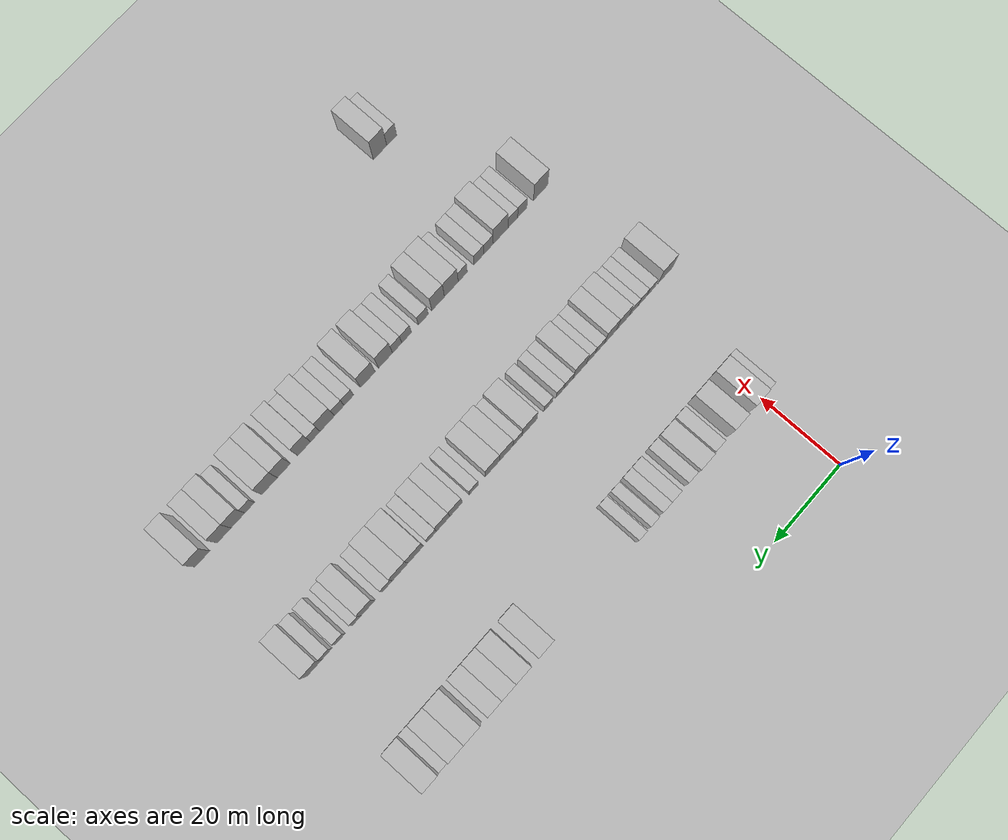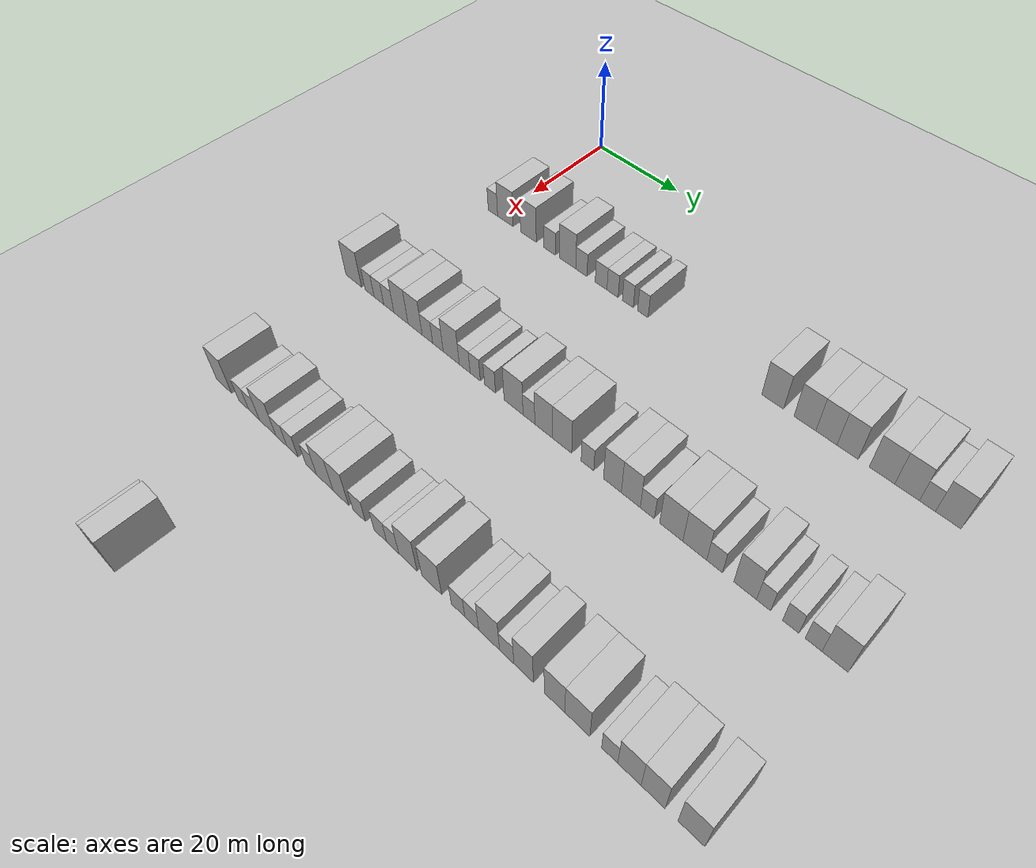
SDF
<sdf version="1.6">
 <world name="default">
  <include><name>ground_plane_1</name><uri>model://HANNAS_ground_plane</uri></include>
  <include>
   <name>ground_plane_2</name>
   <uri>model://HANNAS_ground_plane</uri>
   <pose>100 0 0  0 0 0</pose>
  </include>
  <model name="building_119">
   <static>1</static>
   <pose>25.0000 -1.2006 0 0.000000 0.000000 0.000000</pose>
   <link name="link">
    <pose>0 0 3.00 0 0 0</pose>
    <collision name="collision"><geometry><box><size>10.0000 2.5966 6.0000</size></box></geometry></collision>
    <visual name="visual">
     <cast_shadows>0</cast_shadows>
     <geometry><box><size>10.0000 2.5966 6.0000</size></box></geometry>
     <material>
      <script>
       <uri>model://HANNAS_wall/materials/scripts</uri>
       <uri>model://HANNAS_wall/materials/textures</uri>
       <name>vrc/HANNAS_wall</name>
      </script>
     </material>
    </visual>
   </link>
  </model>
  <model name="building_120">
   <static>1</static>
   <pose>25.0000 2.2116 0 0.000000 0.000000 0.000000</pose>
   <link name="link">
    <pose>0 0 4.50 0 0 0</pose>
    <collision name="collision"><geometry><box><size>10.0000 4.2278 9.0000</size></box></geometry></collision>
    <visual name="visual">
     <cast_shadows>0</cast_shadows>
     <geometry><box><size>10.0000 4.2278 9.0000</size></box></geometry>
     <material>
      <script>
       <uri>model://HANNAS_wall/materials/scripts</uri>
       <uri>model://HANNAS_wall/materials/textures</uri>
       <name>vrc/HANNAS_wall</name>
      </script>
     </material>
    </visual>
   </link>
  </model>
  <model name="building_121">
   <static>1</static>
   <pose>25.0000 8.4004 0 0.000000 0.000000 0.000000</pose>
   <link name="link">
    <pose>0 0 4.50 0 0 0</pose>
    <collision name="collision"><geometry><box><size>10.0000 4.1498 9.0000</size></box></geometry></collision>
    <visual name="visual">
     <cast_shadows>0</cast_shadows>
     <geometry><box><size>10.0000 4.1498 9.0000</size></box></geometry>
     <material>
      <script>
       <uri>model://HANNAS_wall/materials/scripts</uri>
       <uri>model://HANNAS_wall/materials/textures</uri>
       <name>vrc/HANNAS_wall</name>
      </script>
     </material>
    </visual>
   </link>
  </model>
  <model name="building_122">
   <static>1</static>
   <pose>25.0000 13.9528 0 0.000000 0.000000 0.000000</pose>
   <link name="link">
    <pose>0 0 3.00 0 0 0</pose>
    <collision name="collision"><geometry><box><size>10.0000 2.9549 6.0000</size></box></geometry></collision>
    <visual name="visual">
     <cast_shadows>0</cast_shadows>
     <geometry><box><size>10.0000 2.9549 6.0000</size></box></geometry>
     <material>
      <script>
       <uri>model://HANNAS_wall/materials/scripts</uri>
       <uri>model://HANNAS_wall/materials/textures</uri>
       <name>vrc/HANNAS_wall</name>
      </script>
     </material>
    </visual>
   </link>
  </model>
  <model name="building_123">
   <static>1</static>
   <pose>25.0000 18.4940 0 0.000000 0.000000 0.000000</pose>
   <link name="link">
    <pose>0 0 4.50 0 0 0</pose>
    <collision name="collision"><geometry><box><size>10.0000 4.1277 9.0000</size></box></geometry></collision>
    <visual name="visual">
     <cast_shadows>0</cast_shadows>
     <geometry><box><size>10.0000 4.1277 9.0000</size></box></geometry>
     <material>
      <script>
       <uri>model://HANNAS_wall/materials/scripts</uri>
       <uri>model://HANNAS_wall/materials/textures</uri>
       <name>vrc/HANNAS_wall</name>
      </script>
     </material>
    </visual>
   </link>
  </model>
  <model name="building_124">
   <static>1</static>
   <pose>25.0000 21.9542 0 0.000000 0.000000 0.000000</pose>
   <link name="link">
    <pose>0 0 3.00 0 0 0</pose>
    <collision name="collision"><geometry><box><size>10.0000 2.7927 6.0000</size></box></geometry></collision>
    <visual name="visual">
     <cast_shadows>0</cast_shadows>
     <geometry><box><size>10.0000 2.7927 6.0000</size></box></geometry>
     <material>
      <script>
       <uri>model://HANNAS_wall/materials/scripts</uri>
       <uri>model://HANNAS_wall/materials/textures</uri>
       <name>vrc/HANNAS_wall</name>
      </script>
     </material>
    </visual>
   </link>
  </model>
  <model name="building_125">
   <static>1</static>
   <pose>25.0000 26.7696 0 0.000000 0.000000 0.000000</pose>
   <link name="link">
    <pose>0 0 3.00 0 0 0</pose>
    <collision name="collision"><geometry><box><size>10.0000 2.8382 6.0000</size></box></geometry></collision>
    <visual name="visual">
     <cast_shadows>0</cast_shadows>
     <geometry><box><size>10.0000 2.8382 6.0000</size></box></geometry>
     <material>
      <script>
       <uri>model://HANNAS_wall/materials/scripts</uri>
       <uri>model://HANNAS_wall/materials/textures</uri>
       <name>vrc/HANNAS_wall</name>
      </script>
     </material>
    </visual>
   </link>
  </model>
  <model name="building_126">
   <static>1</static>
   <pose>25.0000 29.5200 0 0.000000 0.000000 0.000000</pose>
   <link name="link">
    <pose>0 0 3.00 0 0 0</pose>
    <collision name="collision"><geometry><box><size>10.0000 2.6626 6.0000</size></box></geometry></collision>
    <visual name="visual">
     <cast_shadows>0</cast_shadows>
     <geometry><box><size>10.0000 2.6626 6.0000</size></box></geometry>
     <material>
      <script>
       <uri>model://HANNAS_wall/materials/scripts</uri>
       <uri>model://HANNAS_wall/materials/textures</uri>
       <name>vrc/HANNAS_wall</name>
      </script>
     </material>
    </visual>
   </link>
  </model>
  <model name="building_127">
   <static>1</static>
   <pose>25.0000 33.1247 0 0.000000 0.000000 0.000000</pose>
   <link name="link">
    <pose>0 0 3.00 0 0 0</pose>
    <collision name="collision"><geometry><box><size>10.0000 2.5468 6.0000</size></box></geometry></collision>
    <visual name="visual">
     <cast_shadows>0</cast_shadows>
     <geometry><box><size>10.0000 2.5468 6.0000</size></box></geometry>
     <material>
      <script>
       <uri>model://HANNAS_wall/materials/scripts</uri>
       <uri>model://HANNAS_wall/materials/textures</uri>
       <name>vrc/HANNAS_wall</name>
      </script>
     </material>
    </visual>
   </link>
  </model>
  <model name="building_128">
   <static>1</static>
   <pose>25.0000 36.6034 0 0.000000 0.000000 0.000000</pose>
   <link name="link">
    <pose>0 0 3.00 0 0 0</pose>
    <collision name="collision"><geometry><box><size>10.0000 2.4104 6.0000</size></box></geometry></collision>
    <visual name="visual">
     <cast_shadows>0</cast_shadows>
     <geometry><box><size>10.0000 2.4104 6.0000</size></box></geometry>
     <material>
      <script>
       <uri>model://HANNAS_wall/materials/scripts</uri>
       <uri>model://HANNAS_wall/materials/textures</uri>
       <name>vrc/HANNAS_wall</name>
      </script>
     </material>
    </visual>
   </link>
  </model>
  <model name="building_129">
   <static>1</static>
   <pose>25.0000 64.2995 0 0.000000 0.000000 0.000000</pose>
   <link name="link">
    <pose>0 0 4.50 0 0 0</pose>
    <collision name="collision"><geometry><box><size>10.0000 4.3273 9.0000</size></box></geometry></collision>
    <visual name="visual">
     <cast_shadows>0</cast_shadows>
     <geometry><box><size>10.0000 4.3273 9.0000</size></box></geometry>
     <material>
      <script>
       <uri>model://HANNAS_wall/materials/scripts</uri>
       <uri>model://HANNAS_wall/materials/textures</uri>
       <name>vrc/HANNAS_wall</name>
      </script>
     </material>
    </visual>
   </link>
  </model>
  <model name="building_130">
   <static>1</static>
   <pose>25.0000 70.5624 0 0.000000 0.000000 0.000000</pose>
   <link name="link">
    <pose>0 0 4.50 0 0 0</pose>
    <collision name="collision"><geometry><box><size>10.0000 4.1986 9.0000</size></box></geometry></collision>
    <visual name="visual">
     <cast_shadows>0</cast_shadows>
     <geometry><box><size>10.0000 4.1986 9.0000</size></box></geometry>
     <material>
      <script>
       <uri>model://HANNAS_wall/materials/scripts</uri>
       <uri>model://HANNAS_wall/materials/textures</uri>
       <name>vrc/HANNAS_wall</name>
      </script>
     </material>
    </visual>
   </link>
  </model>
  <model name="building_131">
   <static>1</static>
   <pose>25.0000 74.6292 0 0.000000 0.000000 0.000000</pose>
   <link name="link">
    <pose>0 0 4.50 0 0 0</pose>
    <collision name="collision"><geometry><box><size>10.0000 3.9350 9.0000</size></box></geometry></collision>
    <visual name="visual">
     <cast_shadows>0</cast_shadows>
     <geometry><box><size>10.0000 3.9350 9.0000</size></box></geometry>
     <material>
      <script>
       <uri>model://HANNAS_wall/materials/scripts</uri>
       <uri>model://HANNAS_wall/materials/textures</uri>
       <name>vrc/HANNAS_wall</name>
      </script>
     </material>
    </visual>
   </link>
  </model>
  <model name="building_132">
   <static>1</static>
   <pose>25.0000 78.5221 0 0.000000 0.000000 0.000000</pose>
   <link name="link">
    <pose>0 0 4.50 0 0 0</pose>
    <collision name="collision"><geometry><box><size>10.0000 3.8506 9.0000</size></box></geometry></collision>
    <visual name="visual">
     <cast_shadows>0</cast_shadows>
     <geometry><box><size>10.0000 3.8506 9.0000</size></box></geometry>
     <material>
      <script>
       <uri>model://HANNAS_wall/materials/scripts</uri>
       <uri>model://HANNAS_wall/materials/textures</uri>
       <name>vrc/HANNAS_wall</name>
      </script>
     </material>
    </visual>
   </link>
  </model>
  <model name="building_133">
   <static>1</static>
   <pose>25.0000 84.6858 0 0.000000 0.000000 0.000000</pose>
   <link name="link">
    <pose>0 0 4.50 0 0 0</pose>
    <collision name="collision"><geometry><box><size>10.0000 4.4769 9.0000</size></box></geometry></collision>
    <visual name="visual">
     <cast_shadows>0</cast_shadows>
     <geometry><box><size>10.0000 4.4769 9.0000</size></box></geometry>
     <material>
      <script>
       <uri>model://HANNAS_wall/materials/scripts</uri>
       <uri>model://HANNAS_wall/materials/textures</uri>
       <name>vrc/HANNAS_wall</name>
      </script>
     </material>
    </visual>
   </link>
  </model>
  <model name="building_134">
   <static>1</static>
   <pose>25.0000 89.0425 0 0.000000 0.000000 0.000000</pose>
   <link name="link">
    <pose>0 0 4.50 0 0 0</pose>
    <collision name="collision"><geometry><box><size>10.0000 4.2365 9.0000</size></box></geometry></collision>
    <visual name="visual">
     <cast_shadows>0</cast_shadows>
     <geometry><box><size>10.0000 4.2365 9.0000</size></box></geometry>
     <material>
      <script>
       <uri>model://HANNAS_wall/materials/scripts</uri>
       <uri>model://HANNAS_wall/materials/textures</uri>
       <name>vrc/HANNAS_wall</name>
      </script>
     </material>
    </visual>
   </link>
  </model>
  <model name="building_135">
   <static>1</static>
   <pose>25.0000 92.5062 0 0.000000 0.000000 0.000000</pose>
   <link name="link">
    <pose>0 0 3.00 0 0 0</pose>
    <collision name="collision"><geometry><box><size>10.0000 2.6910 6.0000</size></box></geometry></collision>
    <visual name="visual">
     <cast_shadows>0</cast_shadows>
     <geometry><box><size>10.0000 2.6910 6.0000</size></box></geometry>
     <material>
      <script>
       <uri>model://HANNAS_wall/materials/scripts</uri>
       <uri>model://HANNAS_wall/materials/textures</uri>
       <name>vrc/HANNAS_wall</name>
      </script>
     </material>
    </visual>
   </link>
  </model>
  <model name="building_136">
   <static>1</static>
   <pose>25.0000 95.9658 0 0.000000 0.000000 0.000000</pose>
   <link name="link">
    <pose>0 0 4.50 0 0 0</pose>
    <collision name="collision"><geometry><box><size>10.0000 4.2281 9.0000</size></box></geometry></collision>
    <visual name="visual">
     <cast_shadows>0</cast_shadows>
     <geometry><box><size>10.0000 4.2281 9.0000</size></box></geometry>
     <material>
      <script>
       <uri>model://HANNAS_wall/materials/scripts</uri>
       <uri>model://HANNAS_wall/materials/textures</uri>
       <name>vrc/HANNAS_wall</name>
      </script>
     </material>
    </visual>
   </link>
  </model>
  <model name="building_335">
   <static>1</static>
   <pose>55.0000 -6.2991 0 0.000000 0.000000 0.000000</pose>
   <link name="link">
    <pose>0 0 4.50 0 0 0</pose>
    <collision name="collision"><geometry><box><size>10.0000 4.4417 9.0000</size></box></geometry></collision>
    <visual name="visual">
     <cast_shadows>0</cast_shadows>
     <geometry><box><size>10.0000 4.4417 9.0000</size></box></geometry>
     <material>
      <script>
       <uri>model://HANNAS_wall/materials/scripts</uri>
       <uri>model://HANNAS_wall/materials/textures</uri>
       <name>vrc/HANNAS_wall</name>
      </script>
     </material>
    </visual>
   </link>
  </model>
  <model name="building_336">
   <static>1</static>
   <pose>55.0000 -1.8204 0 0.000000 0.000000 0.000000</pose>
   <link name="link">
    <pose>0 0 3.00 0 0 0</pose>
    <collision name="collision"><geometry><box><size>10.0000 2.5157 6.0000</size></box></geometry></collision>
    <visual name="visual">
     <cast_shadows>0</cast_shadows>
     <geometry><box><size>10.0000 2.5157 6.0000</size></box></geometry>
     <material>
      <script>
       <uri>model://HANNAS_wall/materials/scripts</uri>
       <uri>model://HANNAS_wall/materials/textures</uri>
       <name>vrc/HANNAS_wall</name>
      </script>
     </material>
    </visual>
   </link>
  </model>
  <model name="building_337">
   <static>1</static>
   <pose>55.0000 0.7592 0 0.000000 0.000000 0.000000</pose>
   <link name="link">
    <pose>0 0 3.00 0 0 0</pose>
    <collision name="collision"><geometry><box><size>10.0000 2.6434 6.0000</size></box></geometry></collision>
    <visual name="visual">
     <cast_shadows>0</cast_shadows>
     <geometry><box><size>10.0000 2.6434 6.0000</size></box></geometry>
     <material>
      <script>
       <uri>model://HANNAS_wall/materials/scripts</uri>
       <uri>model://HANNAS_wall/materials/textures</uri>
       <name>vrc/HANNAS_wall</name>
      </script>
     </material>
    </visual>
   </link>
  </model>
  <model name="building_338">
   <static>1</static>
   <pose>55.0000 3.4601 0 0.000000 0.000000 0.000000</pose>
   <link name="link">
    <pose>0 0 3.00 0 0 0</pose>
    <collision name="collision"><geometry><box><size>10.0000 2.7585 6.0000</size></box></geometry></collision>
    <visual name="visual">
     <cast_shadows>0</cast_shadows>
     <geometry><box><size>10.0000 2.7585 6.0000</size></box></geometry>
     <material>
      <script>
       <uri>model://HANNAS_wall/materials/scripts</uri>
       <uri>model://HANNAS_wall/materials/textures</uri>
       <name>vrc/HANNAS_wall</name>
      </script>
     </material>
    </visual>
   </link>
  </model>
  <model name="building_339">
   <static>1</static>
   <pose>55.0000 6.7435 0 0.000000 0.000000 0.000000</pose>
   <link name="link">
    <pose>0 0 4.50 0 0 0</pose>
    <collision name="collision"><geometry><box><size>10.0000 3.8083 9.0000</size></box></geometry></collision>
    <visual name="visual">
     <cast_shadows>0</cast_shadows>
     <geometry><box><size>10.0000 3.8083 9.0000</size></box></geometry>
     <material>
      <script>
       <uri>model://HANNAS_wall/materials/scripts</uri>
       <uri>model://HANNAS_wall/materials/textures</uri>
       <name>vrc/HANNAS_wall</name>
      </script>
     </material>
    </visual>
   </link>
  </model>
  <model name="building_340">
   <static>1</static>
   <pose>55.0000 10.4939 0 0.000000 0.000000 0.000000</pose>
   <link name="link">
    <pose>0 0 4.50 0 0 0</pose>
    <collision name="collision"><geometry><box><size>10.0000 3.6924 9.0000</size></box></geometry></collision>
    <visual name="visual">
     <cast_shadows>0</cast_shadows>
     <geometry><box><size>10.0000 3.6924 9.0000</size></box></geometry>
     <material>
      <script>
       <uri>model://HANNAS_wall/materials/scripts</uri>
       <uri>model://HANNAS_wall/materials/textures</uri>
       <name>vrc/HANNAS_wall</name>
      </script>
     </material>
    </visual>
   </link>
  </model>
  <model name="building_341">
   <static>1</static>
   <pose>55.0000 13.7006 0 0.000000 0.000000 0.000000</pose>
   <link name="link">
    <pose>0 0 3.00 0 0 0</pose>
    <collision name="collision"><geometry><box><size>10.0000 2.7210 6.0000</size></box></geometry></collision>
    <visual name="visual">
     <cast_shadows>0</cast_shadows>
     <geometry><box><size>10.0000 2.7210 6.0000</size></box></geometry>
     <material>
      <script>
       <uri>model://HANNAS_wall/materials/scripts</uri>
       <uri>model://HANNAS_wall/materials/textures</uri>
       <name>vrc/HANNAS_wall</name>
      </script>
     </material>
    </visual>
   </link>
  </model>
  <model name="building_342">
   <static>1</static>
   <pose>55.0000 16.3982 0 0.000000 0.000000 0.000000</pose>
   <link name="link">
    <pose>0 0 3.00 0 0 0</pose>
    <collision name="collision"><geometry><box><size>10.0000 2.6743 6.0000</size></box></geometry></collision>
    <visual name="visual">
     <cast_shadows>0</cast_shadows>
     <geometry><box><size>10.0000 2.6743 6.0000</size></box></geometry>
     <material>
      <script>
       <uri>model://HANNAS_wall/materials/scripts</uri>
       <uri>model://HANNAS_wall/materials/textures</uri>
       <name>vrc/HANNAS_wall</name>
      </script>
     </material>
    </visual>
   </link>
  </model>
  <model name="building_343">
   <static>1</static>
   <pose>55.0000 19.7475 0 0.000000 0.000000 0.000000</pose>
   <link name="link">
    <pose>0 0 4.50 0 0 0</pose>
    <collision name="collision"><geometry><box><size>10.0000 4.0243 9.0000</size></box></geometry></collision>
    <visual name="visual">
     <cast_shadows>0</cast_shadows>
     <geometry><box><size>10.0000 4.0243 9.0000</size></box></geometry>
     <material>
      <script>
       <uri>model://HANNAS_wall/materials/scripts</uri>
       <uri>model://HANNAS_wall/materials/textures</uri>
       <name>vrc/HANNAS_wall</name>
      </script>
     </material>
    </visual>
   </link>
  </model>
  <model name="building_344">
   <static>1</static>
   <pose>55.0000 23.0898 0 0.000000 0.000000 0.000000</pose>
   <link name="link">
    <pose>0 0 3.00 0 0 0</pose>
    <collision name="collision"><geometry><box><size>10.0000 2.6602 6.0000</size></box></geometry></collision>
    <visual name="visual">
     <cast_shadows>0</cast_shadows>
     <geometry><box><size>10.0000 2.6602 6.0000</size></box></geometry>
     <material>
      <script>
       <uri>model://HANNAS_wall/materials/scripts</uri>
       <uri>model://HANNAS_wall/materials/textures</uri>
       <name>vrc/HANNAS_wall</name>
      </script>
     </material>
    </visual>
   </link>
  </model>
  <model name="building_345">
   <static>1</static>
   <pose>55.0000 25.6535 0 0.000000 0.000000 0.000000</pose>
   <link name="link">
    <pose>0 0 3.00 0 0 0</pose>
    <collision name="collision"><geometry><box><size>10.0000 2.4673 6.0000</size></box></geometry></collision>
    <visual name="visual">
     <cast_shadows>0</cast_shadows>
     <geometry><box><size>10.0000 2.4673 6.0000</size></box></geometry>
     <material>
      <script>
       <uri>model://HANNAS_wall/materials/scripts</uri>
       <uri>model://HANNAS_wall/materials/textures</uri>
       <name>vrc/HANNAS_wall</name>
      </script>
     </material>
    </visual>
   </link>
  </model>
  <model name="building_346">
   <static>1</static>
   <pose>55.0000 29.1924 0 0.000000 0.000000 0.000000</pose>
   <link name="link">
    <pose>0 0 3.00 0 0 0</pose>
    <collision name="collision"><geometry><box><size>10.0000 2.6106 6.0000</size></box></geometry></collision>
    <visual name="visual">
     <cast_shadows>0</cast_shadows>
     <geometry><box><size>10.0000 2.6106 6.0000</size></box></geometry>
     <material>
      <script>
       <uri>model://HANNAS_wall/materials/scripts</uri>
       <uri>model://HANNAS_wall/materials/textures</uri>
       <name>vrc/HANNAS_wall</name>
      </script>
     </material>
    </visual>
   </link>
  </model>
  <model name="building_347">
   <static>1</static>
   <pose>55.0000 34.6762 0 0.000000 0.000000 0.000000</pose>
   <link name="link">
    <pose>0 0 4.50 0 0 0</pose>
    <collision name="collision"><geometry><box><size>10.0000 4.3570 9.0000</size></box></geometry></collision>
    <visual name="visual">
     <cast_shadows>0</cast_shadows>
     <geometry><box><size>10.0000 4.3570 9.0000</size></box></geometry>
     <material>
      <script>
       <uri>model://HANNAS_wall/materials/scripts</uri>
       <uri>model://HANNAS_wall/materials/textures</uri>
       <name>vrc/HANNAS_wall</name>
      </script>
     </material>
    </visual>
   </link>
  </model>
  <model name="building_348">
   <static>1</static>
   <pose>55.0000 38.1796 0 0.000000 0.000000 0.000000</pose>
   <link name="link">
    <pose>0 0 3.00 0 0 0</pose>
    <collision name="collision"><geometry><box><size>10.0000 2.6498 6.0000</size></box></geometry></collision>
    <visual name="visual">
     <cast_shadows>0</cast_shadows>
     <geometry><box><size>10.0000 2.6498 6.0000</size></box></geometry>
     <material>
      <script>
       <uri>model://HANNAS_wall/materials/scripts</uri>
       <uri>model://HANNAS_wall/materials/textures</uri>
       <name>vrc/HANNAS_wall</name>
      </script>
     </material>
    </visual>
   </link>
  </model>
  <model name="building_349">
   <static>1</static>
   <pose>55.0000 41.4426 0 0.000000 0.000000 0.000000</pose>
   <link name="link">
    <pose>0 0 4.50 0 0 0</pose>
    <collision name="collision"><geometry><box><size>10.0000 3.8762 9.0000</size></box></geometry></collision>
    <visual name="visual">
     <cast_shadows>0</cast_shadows>
     <geometry><box><size>10.0000 3.8762 9.0000</size></box></geometry>
     <material>
      <script>
       <uri>model://HANNAS_wall/materials/scripts</uri>
       <uri>model://HANNAS_wall/materials/textures</uri>
       <name>vrc/HANNAS_wall</name>
      </script>
     </material>
    </visual>
   </link>
  </model>
  <model name="building_350">
   <static>1</static>
   <pose>55.0000 45.4689 0 0.000000 0.000000 0.000000</pose>
   <link name="link">
    <pose>0 0 4.50 0 0 0</pose>
    <collision name="collision"><geometry><box><size>10.0000 4.1763 9.0000</size></box></geometry></collision>
    <visual name="visual">
     <cast_shadows>0</cast_shadows>
     <geometry><box><size>10.0000 4.1763 9.0000</size></box></geometry>
     <material>
      <script>
       <uri>model://HANNAS_wall/materials/scripts</uri>
       <uri>model://HANNAS_wall/materials/textures</uri>
       <name>vrc/HANNAS_wall</name>
      </script>
     </material>
    </visual>
   </link>
  </model>
  <model name="building_351">
   <static>1</static>
   <pose>55.0000 50.8869 0 0.000000 0.000000 0.000000</pose>
   <link name="link">
    <pose>0 0 3.00 0 0 0</pose>
    <collision name="collision"><geometry><box><size>10.0000 2.6598 6.0000</size></box></geometry></collision>
    <visual name="visual">
     <cast_shadows>0</cast_shadows>
     <geometry><box><size>10.0000 2.6598 6.0000</size></box></geometry>
     <material>
      <script>
       <uri>model://HANNAS_wall/materials/scripts</uri>
       <uri>model://HANNAS_wall/materials/textures</uri>
       <name>vrc/HANNAS_wall</name>
      </script>
     </material>
    </visual>
   </link>
  </model>
  <model name="building_352">
   <static>1</static>
   <pose>55.0000 56.0265 0 0.000000 0.000000 0.000000</pose>
   <link name="link">
    <pose>0 0 4.50 0 0 0</pose>
    <collision name="collision"><geometry><box><size>10.0000 3.6193 9.0000</size></box></geometry></collision>
    <visual name="visual">
     <cast_shadows>0</cast_shadows>
     <geometry><box><size>10.0000 3.6193 9.0000</size></box></geometry>
     <material>
      <script>
       <uri>model://HANNAS_wall/materials/scripts</uri>
       <uri>model://HANNAS_wall/materials/textures</uri>
       <name>vrc/HANNAS_wall</name>
      </script>
     </material>
    </visual>
   </link>
  </model>
  <model name="building_353">
   <static>1</static>
   <pose>55.0000 59.7231 0 0.000000 0.000000 0.000000</pose>
   <link name="link">
    <pose>0 0 4.50 0 0 0</pose>
    <collision name="collision"><geometry><box><size>10.0000 3.7739 9.0000</size></box></geometry></collision>
    <visual name="visual">
     <cast_shadows>0</cast_shadows>
     <geometry><box><size>10.0000 3.7739 9.0000</size></box></geometry>
     <material>
      <script>
       <uri>model://HANNAS_wall/materials/scripts</uri>
       <uri>model://HANNAS_wall/materials/textures</uri>
       <name>vrc/HANNAS_wall</name>
      </script>
     </material>
    </visual>
   </link>
  </model>
  <model name="building_354">
   <static>1</static>
   <pose>55.0000 62.9827 0 0.000000 0.000000 0.000000</pose>
   <link name="link">
    <pose>0 0 3.00 0 0 0</pose>
    <collision name="collision"><geometry><box><size>10.0000 2.7454 6.0000</size></box></geometry></collision>
    <visual name="visual">
     <cast_shadows>0</cast_shadows>
     <geometry><box><size>10.0000 2.7454 6.0000</size></box></geometry>
     <material>
      <script>
       <uri>model://HANNAS_wall/materials/scripts</uri>
       <uri>model://HANNAS_wall/materials/textures</uri>
       <name>vrc/HANNAS_wall</name>
      </script>
     </material>
    </visual>
   </link>
  </model>
  <model name="building_355">
   <static>1</static>
   <pose>55.0000 67.5577 0 0.000000 0.000000 0.000000</pose>
   <link name="link">
    <pose>0 0 4.50 0 0 0</pose>
    <collision name="collision"><geometry><box><size>10.0000 4.4045 9.0000</size></box></geometry></collision>
    <visual name="visual">
     <cast_shadows>0</cast_shadows>
     <geometry><box><size>10.0000 4.4045 9.0000</size></box></geometry>
     <material>
      <script>
       <uri>model://HANNAS_wall/materials/scripts</uri>
       <uri>model://HANNAS_wall/materials/textures</uri>
       <name>vrc/HANNAS_wall</name>
      </script>
     </material>
    </visual>
   </link>
  </model>
  <model name="building_356">
   <static>1</static>
   <pose>55.0000 71.9648 0 0.000000 0.000000 0.000000</pose>
   <link name="link">
    <pose>0 0 4.50 0 0 0</pose>
    <collision name="collision"><geometry><box><size>10.0000 4.4098 9.0000</size></box></geometry></collision>
    <visual name="visual">
     <cast_shadows>0</cast_shadows>
     <geometry><box><size>10.0000 4.4098 9.0000</size></box></geometry>
     <material>
      <script>
       <uri>model://HANNAS_wall/materials/scripts</uri>
       <uri>model://HANNAS_wall/materials/textures</uri>
       <name>vrc/HANNAS_wall</name>
      </script>
     </material>
    </visual>
   </link>
  </model>
  <model name="building_357">
   <static>1</static>
   <pose>55.0000 75.5859 0 0.000000 0.000000 0.000000</pose>
   <link name="link">
    <pose>0 0 3.00 0 0 0</pose>
    <collision name="collision"><geometry><box><size>10.0000 2.8323 6.0000</size></box></geometry></collision>
    <visual name="visual">
     <cast_shadows>0</cast_shadows>
     <geometry><box><size>10.0000 2.8323 6.0000</size></box></geometry>
     <material>
      <script>
       <uri>model://HANNAS_wall/materials/scripts</uri>
       <uri>model://HANNAS_wall/materials/textures</uri>
       <name>vrc/HANNAS_wall</name>
      </script>
     </material>
    </visual>
   </link>
  </model>
  <model name="building_358">
   <static>1</static>
   <pose>55.0000 80.9829 0 0.000000 0.000000 0.000000</pose>
   <link name="link">
    <pose>0 0 4.50 0 0 0</pose>
    <collision name="collision"><geometry><box><size>10.0000 3.9616 9.0000</size></box></geometry></collision>
    <visual name="visual">
     <cast_shadows>0</cast_shadows>
     <geometry><box><size>10.0000 3.9616 9.0000</size></box></geometry>
     <material>
      <script>
       <uri>model://HANNAS_wall/materials/scripts</uri>
       <uri>model://HANNAS_wall/materials/textures</uri>
       <name>vrc/HANNAS_wall</name>
      </script>
     </material>
    </visual>
   </link>
  </model>
  <model name="building_359">
   <static>1</static>
   <pose>55.0000 84.1639 0 0.000000 0.000000 0.000000</pose>
   <link name="link">
    <pose>0 0 3.00 0 0 0</pose>
    <collision name="collision"><geometry><box><size>10.0000 2.4005 6.0000</size></box></geometry></collision>
    <visual name="visual">
     <cast_shadows>0</cast_shadows>
     <geometry><box><size>10.0000 2.4005 6.0000</size></box></geometry>
     <material>
      <script>
       <uri>model://HANNAS_wall/materials/scripts</uri>
       <uri>model://HANNAS_wall/materials/textures</uri>
       <name>vrc/HANNAS_wall</name>
      </script>
     </material>
    </visual>
   </link>
  </model>
  <model name="building_360">
   <static>1</static>
   <pose>55.0000 88.7185 0 0.000000 0.000000 0.000000</pose>
   <link name="link">
    <pose>0 0 3.00 0 0 0</pose>
    <collision name="collision"><geometry><box><size>10.0000 2.7086 6.0000</size></box></geometry></collision>
    <visual name="visual">
     <cast_shadows>0</cast_shadows>
     <geometry><box><size>10.0000 2.7086 6.0000</size></box></geometry>
     <material>
      <script>
       <uri>model://HANNAS_wall/materials/scripts</uri>
       <uri>model://HANNAS_wall/materials/textures</uri>
       <name>vrc/HANNAS_wall</name>
      </script>
     </material>
    </visual>
   </link>
  </model>
  <model name="building_361">
   <static>1</static>
   <pose>55.0000 92.4374 0 0.000000 0.000000 0.000000</pose>
   <link name="link">
    <pose>0 0 3.00 0 0 0</pose>
    <collision name="collision"><geometry><box><size>10.0000 2.7292 6.0000</size></box></geometry></collision>
    <visual name="visual">
     <cast_shadows>0</cast_shadows>
     <geometry><box><size>10.0000 2.7292 6.0000</size></box></geometry>
     <material>
      <script>
       <uri>model://HANNAS_wall/materials/scripts</uri>
       <uri>model://HANNAS_wall/materials/textures</uri>
       <name>vrc/HANNAS_wall</name>
      </script>
     </material>
    </visual>
   </link>
  </model>
  <model name="building_362">
   <static>1</static>
   <pose>55.0000 95.8774 0 0.000000 0.000000 0.000000</pose>
   <link name="link">
    <pose>0 0 4.50 0 0 0</pose>
    <collision name="collision"><geometry><box><size>10.0000 4.1508 9.0000</size></box></geometry></collision>
    <visual name="visual">
     <cast_shadows>0</cast_shadows>
     <geometry><box><size>10.0000 4.1508 9.0000</size></box></geometry>
     <material>
      <script>
       <uri>model://HANNAS_wall/materials/scripts</uri>
       <uri>model://HANNAS_wall/materials/textures</uri>
       <name>vrc/HANNAS_wall</name>
      </script>
     </material>
    </visual>
   </link>
  </model>
  <model name="building_549">
   <static>1</static>
   <pose>85.0000 -2.8061 0 0.000000 0.000000 0.000000</pose>
   <link name="link">
    <pose>0 0 4.50 0 0 0</pose>
    <collision name="collision"><geometry><box><size>10.0000 4.3460 9.0000</size></box></geometry></collision>
    <visual name="visual">
     <cast_shadows>0</cast_shadows>
     <geometry><box><size>10.0000 4.3460 9.0000</size></box></geometry>
     <material>
      <script>
       <uri>model://HANNAS_wall/materials/scripts</uri>
       <uri>model://HANNAS_wall/materials/textures</uri>
       <name>vrc/HANNAS_wall</name>
      </script>
     </material>
    </visual>
   </link>
  </model>
  <model name="building_550">
   <static>1</static>
   <pose>85.0000 2.7687 0 0.000000 0.000000 0.000000</pose>
   <link name="link">
    <pose>0 0 3.00 0 0 0</pose>
    <collision name="collision"><geometry><box><size>10.0000 2.8035 6.0000</size></box></geometry></collision>
    <visual name="visual">
     <cast_shadows>0</cast_shadows>
     <geometry><box><size>10.0000 2.8035 6.0000</size></box></geometry>
     <material>
      <script>
       <uri>model://HANNAS_wall/materials/scripts</uri>
       <uri>model://HANNAS_wall/materials/textures</uri>
       <name>vrc/HANNAS_wall</name>
      </script>
     </material>
    </visual>
   </link>
  </model>
  <model name="building_551">
   <static>1</static>
   <pose>85.0000 5.6280 0 0.000000 0.000000 0.000000</pose>
   <link name="link">
    <pose>0 0 3.00 0 0 0</pose>
    <collision name="collision"><geometry><box><size>10.0000 2.9150 6.0000</size></box></geometry></collision>
    <visual name="visual">
     <cast_shadows>0</cast_shadows>
     <geometry><box><size>10.0000 2.9150 6.0000</size></box></geometry>
     <material>
      <script>
       <uri>model://HANNAS_wall/materials/scripts</uri>
       <uri>model://HANNAS_wall/materials/textures</uri>
       <name>vrc/HANNAS_wall</name>
      </script>
     </material>
    </visual>
   </link>
  </model>
  <model name="building_552">
   <static>1</static>
   <pose>85.0000 9.3132 0 0.000000 0.000000 0.000000</pose>
   <link name="link">
    <pose>0 0 4.50 0 0 0</pose>
    <collision name="collision"><geometry><box><size>10.0000 4.4553 9.0000</size></box></geometry></collision>
    <visual name="visual">
     <cast_shadows>0</cast_shadows>
     <geometry><box><size>10.0000 4.4553 9.0000</size></box></geometry>
     <material>
      <script>
       <uri>model://HANNAS_wall/materials/scripts</uri>
       <uri>model://HANNAS_wall/materials/textures</uri>
       <name>vrc/HANNAS_wall</name>
      </script>
     </material>
    </visual>
   </link>
  </model>
  <model name="building_553">
   <static>1</static>
   <pose>85.0000 12.9816 0 0.000000 0.000000 0.000000</pose>
   <link name="link">
    <pose>0 0 3.00 0 0 0</pose>
    <collision name="collision"><geometry><box><size>10.0000 2.8816 6.0000</size></box></geometry></collision>
    <visual name="visual">
     <cast_shadows>0</cast_shadows>
     <geometry><box><size>10.0000 2.8816 6.0000</size></box></geometry>
     <material>
      <script>
       <uri>model://HANNAS_wall/materials/scripts</uri>
       <uri>model://HANNAS_wall/materials/textures</uri>
       <name>vrc/HANNAS_wall</name>
      </script>
     </material>
    </visual>
   </link>
  </model>
  <model name="building_554">
   <static>1</static>
   <pose>85.0000 15.8762 0 0.000000 0.000000 0.000000</pose>
   <link name="link">
    <pose>0 0 3.00 0 0 0</pose>
    <collision name="collision"><geometry><box><size>10.0000 2.9075 6.0000</size></box></geometry></collision>
    <visual name="visual">
     <cast_shadows>0</cast_shadows>
     <geometry><box><size>10.0000 2.9075 6.0000</size></box></geometry>
     <material>
      <script>
       <uri>model://HANNAS_wall/materials/scripts</uri>
       <uri>model://HANNAS_wall/materials/textures</uri>
       <name>vrc/HANNAS_wall</name>
      </script>
     </material>
    </visual>
   </link>
  </model>
  <model name="building_555">
   <static>1</static>
   <pose>85.0000 20.6645 0 0.000000 0.000000 0.000000</pose>
   <link name="link">
    <pose>0 0 3.00 0 0 0</pose>
    <collision name="collision"><geometry><box><size>10.0000 2.6691 6.0000</size></box></geometry></collision>
    <visual name="visual">
     <cast_shadows>0</cast_shadows>
     <geometry><box><size>10.0000 2.6691 6.0000</size></box></geometry>
     <material>
      <script>
       <uri>model://HANNAS_wall/materials/scripts</uri>
       <uri>model://HANNAS_wall/materials/textures</uri>
       <name>vrc/HANNAS_wall</name>
      </script>
     </material>
    </visual>
   </link>
  </model>
  <model name="building_556">
   <static>1</static>
   <pose>85.0000 24.0554 0 0.000000 0.000000 0.000000</pose>
   <link name="link">
    <pose>0 0 4.50 0 0 0</pose>
    <collision name="collision"><geometry><box><size>10.0000 4.1127 9.0000</size></box></geometry></collision>
    <visual name="visual">
     <cast_shadows>0</cast_shadows>
     <geometry><box><size>10.0000 4.1127 9.0000</size></box></geometry>
     <material>
      <script>
       <uri>model://HANNAS_wall/materials/scripts</uri>
       <uri>model://HANNAS_wall/materials/textures</uri>
       <name>vrc/HANNAS_wall</name>
      </script>
     </material>
    </visual>
   </link>
  </model>
  <model name="building_557">
   <static>1</static>
   <pose>85.0000 27.9907 0 0.000000 0.000000 0.000000</pose>
   <link name="link">
    <pose>0 0 4.50 0 0 0</pose>
    <collision name="collision"><geometry><box><size>10.0000 3.7578 9.0000</size></box></geometry></collision>
    <visual name="visual">
     <cast_shadows>0</cast_shadows>
     <geometry><box><size>10.0000 3.7578 9.0000</size></box></geometry>
     <material>
      <script>
       <uri>model://HANNAS_wall/materials/scripts</uri>
       <uri>model://HANNAS_wall/materials/textures</uri>
       <name>vrc/HANNAS_wall</name>
      </script>
     </material>
    </visual>
   </link>
  </model>
  <model name="building_558">
   <static>1</static>
   <pose>85.0000 32.3365 0 0.000000 0.000000 0.000000</pose>
   <link name="link">
    <pose>0 0 3.00 0 0 0</pose>
    <collision name="collision"><geometry><box><size>10.0000 2.9337 6.0000</size></box></geometry></collision>
    <visual name="visual">
     <cast_shadows>0</cast_shadows>
     <geometry><box><size>10.0000 2.9337 6.0000</size></box></geometry>
     <material>
      <script>
       <uri>model://HANNAS_wall/materials/scripts</uri>
       <uri>model://HANNAS_wall/materials/textures</uri>
       <name>vrc/HANNAS_wall</name>
      </script>
     </material>
    </visual>
   </link>
  </model>
  <model name="building_559">
   <static>1</static>
   <pose>85.0000 37.2409 0 0.000000 0.000000 0.000000</pose>
   <link name="link">
    <pose>0 0 3.00 0 0 0</pose>
    <collision name="collision"><geometry><box><size>10.0000 2.8751 6.0000</size></box></geometry></collision>
    <visual name="visual">
     <cast_shadows>0</cast_shadows>
     <geometry><box><size>10.0000 2.8751 6.0000</size></box></geometry>
     <material>
      <script>
       <uri>model://HANNAS_wall/materials/scripts</uri>
       <uri>model://HANNAS_wall/materials/textures</uri>
       <name>vrc/HANNAS_wall</name>
      </script>
     </material>
    </visual>
   </link>
  </model>
  <model name="building_560">
   <static>1</static>
   <pose>85.0000 40.0199 0 0.000000 0.000000 0.000000</pose>
   <link name="link">
    <pose>0 0 3.00 0 0 0</pose>
    <collision name="collision"><geometry><box><size>10.0000 2.6829 6.0000</size></box></geometry></collision>
    <visual name="visual">
     <cast_shadows>0</cast_shadows>
     <geometry><box><size>10.0000 2.6829 6.0000</size></box></geometry>
     <material>
      <script>
       <uri>model://HANNAS_wall/materials/scripts</uri>
       <uri>model://HANNAS_wall/materials/textures</uri>
       <name>vrc/HANNAS_wall</name>
      </script>
     </material>
    </visual>
   </link>
  </model>
  <model name="building_561">
   <static>1</static>
   <pose>85.0000 43.3805 0 0.000000 0.000000 0.000000</pose>
   <link name="link">
    <pose>0 0 4.50 0 0 0</pose>
    <collision name="collision"><geometry><box><size>10.0000 4.0382 9.0000</size></box></geometry></collision>
    <visual name="visual">
     <cast_shadows>0</cast_shadows>
     <geometry><box><size>10.0000 4.0382 9.0000</size></box></geometry>
     <material>
      <script>
       <uri>model://HANNAS_wall/materials/scripts</uri>
       <uri>model://HANNAS_wall/materials/textures</uri>
       <name>vrc/HANNAS_wall</name>
      </script>
     </material>
    </visual>
   </link>
  </model>
  <model name="building_562">
   <static>1</static>
   <pose>85.0000 48.5100 0 0.000000 0.000000 0.000000</pose>
   <link name="link">
    <pose>0 0 4.50 0 0 0</pose>
    <collision name="collision"><geometry><box><size>10.0000 4.2208 9.0000</size></box></geometry></collision>
    <visual name="visual">
     <cast_shadows>0</cast_shadows>
     <geometry><box><size>10.0000 4.2208 9.0000</size></box></geometry>
     <material>
      <script>
       <uri>model://HANNAS_wall/materials/scripts</uri>
       <uri>model://HANNAS_wall/materials/textures</uri>
       <name>vrc/HANNAS_wall</name>
      </script>
     </material>
    </visual>
   </link>
  </model>
  <model name="building_563">
   <static>1</static>
   <pose>85.0000 54.0040 0 0.000000 0.000000 0.000000</pose>
   <link name="link">
    <pose>0 0 3.00 0 0 0</pose>
    <collision name="collision"><geometry><box><size>10.0000 2.7672 6.0000</size></box></geometry></collision>
    <visual name="visual">
     <cast_shadows>0</cast_shadows>
     <geometry><box><size>10.0000 2.7672 6.0000</size></box></geometry>
     <material>
      <script>
       <uri>model://HANNAS_wall/materials/scripts</uri>
       <uri>model://HANNAS_wall/materials/textures</uri>
       <name>vrc/HANNAS_wall</name>
      </script>
     </material>
    </visual>
   </link>
  </model>
  <model name="building_564">
   <static>1</static>
   <pose>85.0000 56.7789 0 0.000000 0.000000 0.000000</pose>
   <link name="link">
    <pose>0 0 3.00 0 0 0</pose>
    <collision name="collision"><geometry><box><size>10.0000 2.7827 6.0000</size></box></geometry></collision>
    <visual name="visual">
     <cast_shadows>0</cast_shadows>
     <geometry><box><size>10.0000 2.7827 6.0000</size></box></geometry>
     <material>
      <script>
       <uri>model://HANNAS_wall/materials/scripts</uri>
       <uri>model://HANNAS_wall/materials/textures</uri>
       <name>vrc/HANNAS_wall</name>
      </script>
     </material>
    </visual>
   </link>
  </model>
  <model name="building_565">
   <static>1</static>
   <pose>85.0000 60.2144 0 0.000000 0.000000 0.000000</pose>
   <link name="link">
    <pose>0 0 4.50 0 0 0</pose>
    <collision name="collision"><geometry><box><size>10.0000 4.0884 9.0000</size></box></geometry></collision>
    <visual name="visual">
     <cast_shadows>0</cast_shadows>
     <geometry><box><size>10.0000 4.0884 9.0000</size></box></geometry>
     <material>
      <script>
       <uri>model://HANNAS_wall/materials/scripts</uri>
       <uri>model://HANNAS_wall/materials/textures</uri>
       <name>vrc/HANNAS_wall</name>
      </script>
     </material>
    </visual>
   </link>
  </model>
  <model name="building_566">
   <static>1</static>
   <pose>85.0000 63.6314 0 0.000000 0.000000 0.000000</pose>
   <link name="link">
    <pose>0 0 3.00 0 0 0</pose>
    <collision name="collision"><geometry><box><size>10.0000 2.7456 6.0000</size></box></geometry></collision>
    <visual name="visual">
     <cast_shadows>0</cast_shadows>
     <geometry><box><size>10.0000 2.7456 6.0000</size></box></geometry>
     <material>
      <script>
       <uri>model://HANNAS_wall/materials/scripts</uri>
       <uri>model://HANNAS_wall/materials/textures</uri>
       <name>vrc/HANNAS_wall</name>
      </script>
     </material>
    </visual>
   </link>
  </model>
  <model name="building_567">
   <static>1</static>
   <pose>85.0000 66.8325 0 0.000000 0.000000 0.000000</pose>
   <link name="link">
    <pose>0 0 4.50 0 0 0</pose>
    <collision name="collision"><geometry><box><size>10.0000 3.6567 9.0000</size></box></geometry></collision>
    <visual name="visual">
     <cast_shadows>0</cast_shadows>
     <geometry><box><size>10.0000 3.6567 9.0000</size></box></geometry>
     <material>
      <script>
       <uri>model://HANNAS_wall/materials/scripts</uri>
       <uri>model://HANNAS_wall/materials/textures</uri>
       <name>vrc/HANNAS_wall</name>
      </script>
     </material>
    </visual>
   </link>
  </model>
  <model name="building_568">
   <static>1</static>
   <pose>85.0000 72.5135 0 0.000000 0.000000 0.000000</pose>
   <link name="link">
    <pose>0 0 4.50 0 0 0</pose>
    <collision name="collision"><geometry><box><size>10.0000 3.7051 9.0000</size></box></geometry></collision>
    <visual name="visual">
     <cast_shadows>0</cast_shadows>
     <geometry><box><size>10.0000 3.7051 9.0000</size></box></geometry>
     <material>
      <script>
       <uri>model://HANNAS_wall/materials/scripts</uri>
       <uri>model://HANNAS_wall/materials/textures</uri>
       <name>vrc/HANNAS_wall</name>
      </script>
     </material>
    </visual>
   </link>
  </model>
  <model name="building_569">
   <static>1</static>
   <pose>85.0000 76.5633 0 0.000000 0.000000 0.000000</pose>
   <link name="link">
    <pose>0 0 4.50 0 0 0</pose>
    <collision name="collision"><geometry><box><size>10.0000 4.3945 9.0000</size></box></geometry></collision>
    <visual name="visual">
     <cast_shadows>0</cast_shadows>
     <geometry><box><size>10.0000 4.3945 9.0000</size></box></geometry>
     <material>
      <script>
       <uri>model://HANNAS_wall/materials/scripts</uri>
       <uri>model://HANNAS_wall/materials/textures</uri>
       <name>vrc/HANNAS_wall</name>
      </script>
     </material>
    </visual>
   </link>
  </model>
  <model name="building_570">
   <static>1</static>
   <pose>85.0000 82.1226 0 0.000000 0.000000 0.000000</pose>
   <link name="link">
    <pose>0 0 3.00 0 0 0</pose>
    <collision name="collision"><geometry><box><size>10.0000 2.7242 6.0000</size></box></geometry></collision>
    <visual name="visual">
     <cast_shadows>0</cast_shadows>
     <geometry><box><size>10.0000 2.7242 6.0000</size></box></geometry>
     <material>
      <script>
       <uri>model://HANNAS_wall/materials/scripts</uri>
       <uri>model://HANNAS_wall/materials/textures</uri>
       <name>vrc/HANNAS_wall</name>
      </script>
     </material>
    </visual>
   </link>
  </model>
  <model name="building_571">
   <static>1</static>
   <pose>85.0000 85.4042 0 0.000000 0.000000 0.000000</pose>
   <link name="link">
    <pose>0 0 4.50 0 0 0</pose>
    <collision name="collision"><geometry><box><size>10.0000 3.8390 9.0000</size></box></geometry></collision>
    <visual name="visual">
     <cast_shadows>0</cast_shadows>
     <geometry><box><size>10.0000 3.8390 9.0000</size></box></geometry>
     <material>
      <script>
       <uri>model://HANNAS_wall/materials/scripts</uri>
       <uri>model://HANNAS_wall/materials/textures</uri>
       <name>vrc/HANNAS_wall</name>
      </script>
     </material>
    </visual>
   </link>
  </model>
  <model name="building_572">
   <static>1</static>
   <pose>85.0000 89.2479 0 0.000000 0.000000 0.000000</pose>
   <link name="link">
    <pose>0 0 4.50 0 0 0</pose>
    <collision name="collision"><geometry><box><size>10.0000 3.8483 9.0000</size></box></geometry></collision>
    <visual name="visual">
     <cast_shadows>0</cast_shadows>
     <geometry><box><size>10.0000 3.8483 9.0000</size></box></geometry>
     <material>
      <script>
       <uri>model://HANNAS_wall/materials/scripts</uri>
       <uri>model://HANNAS_wall/materials/textures</uri>
       <name>vrc/HANNAS_wall</name>
      </script>
     </material>
    </visual>
   </link>
  </model>
  <model name="building_573">
   <static>1</static>
   <pose>85.0000 95.2334 0 0.000000 0.000000 0.000000</pose>
   <link name="link">
    <pose>0 0 4.50 0 0 0</pose>
    <collision name="collision"><geometry><box><size>10.0000 4.1227 9.0000</size></box></geometry></collision>
    <visual name="visual">
     <cast_shadows>0</cast_shadows>
     <geometry><box><size>10.0000 4.1227 9.0000</size></box></geometry>
     <material>
      <script>
       <uri>model://HANNAS_wall/materials/scripts</uri>
       <uri>model://HANNAS_wall/materials/textures</uri>
       <name>vrc/HANNAS_wall</name>
      </script>
     </material>
    </visual>
   </link>
  </model>
  <model name="building_767">
   <static>1</static>
   <pose>115.0000 8.8386 0 0.000000 0.000000 0.000000</pose>
   <link name="link">
    <pose>0 0 3.00 0 0 0</pose>
    <collision name="collision"><geometry><box><size>10.0000 2.9737 6.0000</size></box></geometry></collision>
    <visual name="visual">
     <cast_shadows>0</cast_shadows>
     <geometry><box><size>10.0000 2.9737 6.0000</size></box></geometry>
     <material>
      <script>
       <uri>model://HANNAS_wall/materials/scripts</uri>
       <uri>model://HANNAS_wall/materials/textures</uri>
       <name>vrc/HANNAS_wall</name>
      </script>
     </material>
    </visual>
   </link>
  </model>
  <model name="building_768">
   <static>1</static>
   <pose>115.0000 12.3360 0 0.000000 0.000000 0.000000</pose>
   <link name="link">
    <pose>0 0 4.50 0 0 0</pose>
    <collision name="collision"><geometry><box><size>10.0000 4.0210 9.0000</size></box></geometry></collision>
    <visual name="visual">
     <cast_shadows>0</cast_shadows>
     <geometry><box><size>10.0000 4.0210 9.0000</size></box></geometry>
     <material>
      <script>
       <uri>model://HANNAS_wall/materials/scripts</uri>
       <uri>model://HANNAS_wall/materials/textures</uri>
       <name>vrc/HANNAS_wall</name>
      </script>
     </material>
    </visual>
   </link>
  </model>
 </world>
</sdf>
